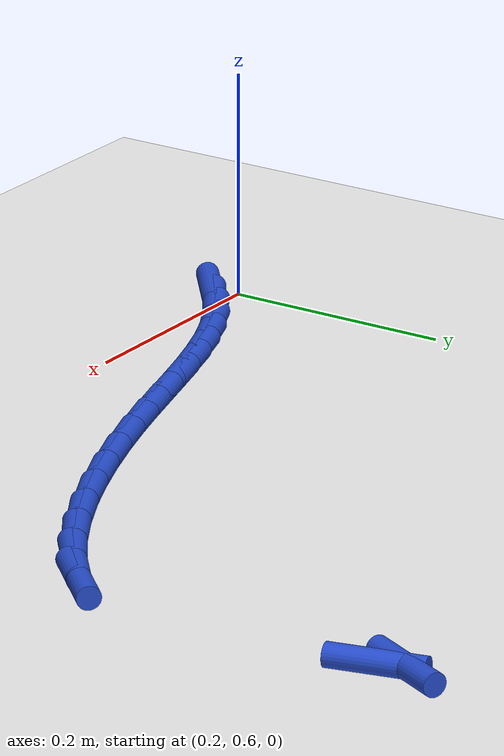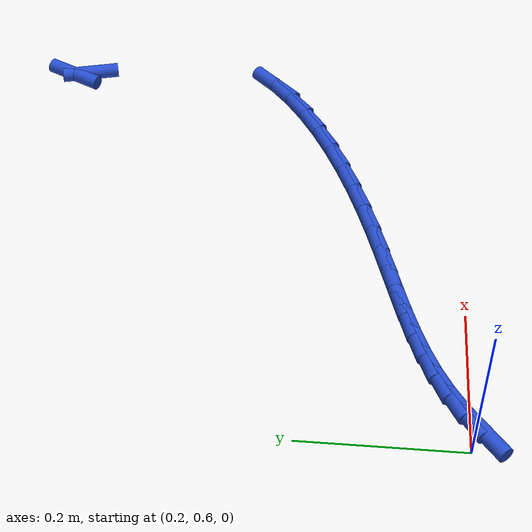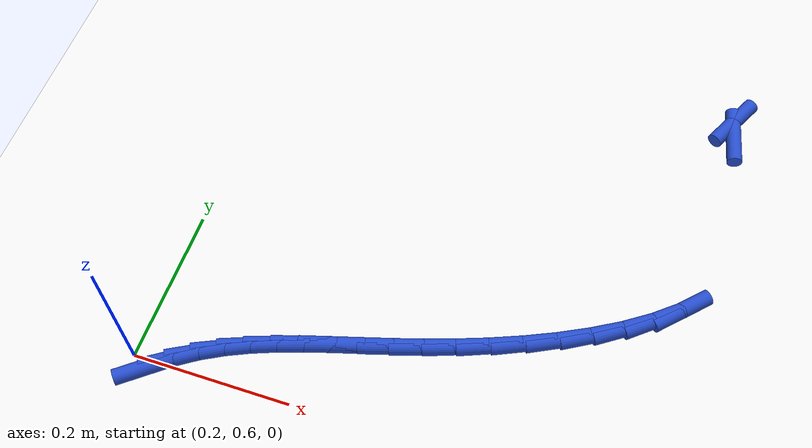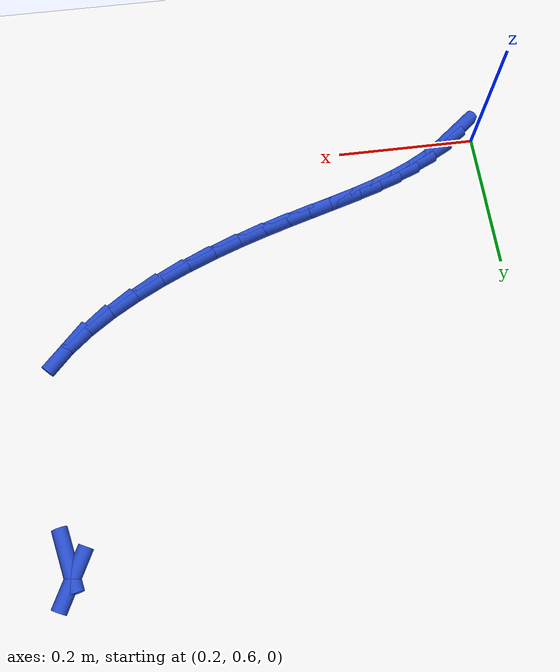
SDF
<sdf version="1.6">
 <world name="default">
  <model name="ground_plane">
   <static>1</static>
   <link name="link">
    <collision name="collision">
     <geometry><plane><normal>0 0 1</normal><size>100 100</size></plane></geometry>
     <surface><friction><ode><mu>100</mu><mu2>50</mu2></ode></friction></surface>
    </collision>
    <visual name="visual">
     <cast_shadows>0</cast_shadows>
     <geometry><plane><normal>0 0 1</normal><size>100 100</size></plane></geometry>
     <material>
      <script><uri>file://media/materials/scripts/gazebo.material</uri><name>Gazebo/WhiteGlow</name></script>
     </material>
    </visual>
   </link>
  </model>
  <model name="line">
   <link name="link_19">
    <pose>0.22421851028423884 0.5877423091255484 0.01 0 1.57 0.6758073908442525</pose>
    <collision name="collision">
     <geometry><cylinder><radius>0.01</radius><length>0.08</length></cylinder></geometry>
    </collision>
    <visual name="visual">
     <material>
      <script><name>Gazebo/Blue</name><uri>file://media/materials/scripts/gazebo.material</uri></script>
     </material>
     <geometry><cylinder><radius>0.01</radius><length>0.08</length></cylinder></geometry>
    </visual>
   </link>
   <link name="link_20">
    <pose>0.2489226295237232 0.6075488483325528 0.01 0 1.57 0.5888493216553347</pose>
    <collision name="collision">
     <geometry><cylinder><radius>0.01</radius><length>0.08</length></cylinder></geometry>
    </collision>
    <visual name="visual">
     <material>
      <script><name>Gazebo/Blue</name><uri>file://media/materials/scripts/gazebo.material</uri></script>
     </material>
     <geometry><cylinder><radius>0.01</radius><length>0.08</length></cylinder></geometry>
    </visual>
   </link>
   <link name="link_21">
    <pose>0.274783455820922 0.6248210458230733 0.01 0 1.57 0.5023941022503997</pose>
    <collision name="collision">
     <geometry><cylinder><radius>0.01</radius><length>0.08</length></cylinder></geometry>
    </collision>
    <visual name="visual">
     <material>
      <script><name>Gazebo/Blue</name><uri>file://media/materials/scripts/gazebo.material</uri></script>
     </material>
     <geometry><cylinder><radius>0.01</radius><length>0.08</length></cylinder></geometry>
    </visual>
   </link>
   <link name="link_22">
    <pose>0.30180047906041185 0.6396646085191082 0.01 0 1.57 0.4283507575286829</pose>
    <collision name="collision">
     <geometry><cylinder><radius>0.01</radius><length>0.08</length></cylinder></geometry>
    </collision>
    <visual name="visual">
     <material>
      <script><name>Gazebo/Blue</name><uri>file://media/materials/scripts/gazebo.material</uri></script>
     </material>
     <geometry><cylinder><radius>0.01</radius><length>0.08</length></cylinder></geometry>
    </visual>
   </link>
   <link name="link_23">
    <pose>0.3299995969917477 0.6525410701493269 0.01 0 1.57 0.36951092484150055</pose>
    <collision name="collision">
     <geometry><cylinder><radius>0.01</radius><length>0.08</length></cylinder></geometry>
    </collision>
    <visual name="visual">
     <material>
      <script><name>Gazebo/Blue</name><uri>file://media/materials/scripts/gazebo.material</uri></script>
     </material>
     <geometry><cylinder><radius>0.01</radius><length>0.08</length></cylinder></geometry>
    </visual>
   </link>
   <link name="link_24">
    <pose>0.3594081208097713 0.6639310095913754 0.01 0 1.57 0.32670310271949693</pose>
    <collision name="collision">
     <geometry><cylinder><radius>0.01</radius><length>0.08</length></cylinder></geometry>
    </collision>
    <visual name="visual">
     <material>
      <script><name>Gazebo/Blue</name><uri>file://media/materials/scripts/gazebo.material</uri></script>
     </material>
     <geometry><cylinder><radius>0.01</radius><length>0.08</length></cylinder></geometry>
    </visual>
   </link>
   <link name="link_25">
    <pose>0.39005336170932364 0.6743150057228985 0.01 0 1.57 0.29965496754526444</pose>
    <collision name="collision">
     <geometry><cylinder><radius>0.01</radius><length>0.08</length></cylinder></geometry>
    </collision>
    <visual name="visual">
     <material>
      <script><name>Gazebo/Blue</name><uri>file://media/materials/scripts/gazebo.material</uri></script>
     </material>
     <geometry><cylinder><radius>0.01</radius><length>0.08</length></cylinder></geometry>
    </visual>
   </link>
   <link name="link_26">
    <pose>0.42196263088524644 0.6841736374215424 0.01 0 1.57 0.28740819542487617</pose>
    <collision name="collision">
     <geometry><cylinder><radius>0.01</radius><length>0.08</length></cylinder></geometry>
    </collision>
    <visual name="visual">
     <material>
      <script><name>Gazebo/Blue</name><uri>file://media/materials/scripts/gazebo.material</uri></script>
     </material>
     <geometry><cylinder><radius>0.01</radius><length>0.08</length></cylinder></geometry>
    </visual>
   </link>
   <link name="link_27">
    <pose>0.45516323953238114 0.6939874835649525 0.01 0 1.57 0.2886335349314423</pose>
    <collision name="collision">
     <geometry><cylinder><radius>0.01</radius><length>0.08</length></cylinder></geometry>
    </collision>
    <visual name="visual">
     <material>
      <script><name>Gazebo/Blue</name><uri>file://media/materials/scripts/gazebo.material</uri></script>
     </material>
     <geometry><cylinder><radius>0.01</radius><length>0.08</length></cylinder></geometry>
    </visual>
   </link>
   <link name="link_28">
    <pose>0.489682498845569 0.7042371230307742 0.01 0 1.57 0.3018209537267275</pose>
    <collision name="collision">
     <geometry><cylinder><radius>0.01</radius><length>0.08</length></cylinder></geometry>
    </collision>
    <visual name="visual">
     <material>
      <script><name>Gazebo/Blue</name><uri>file://media/materials/scripts/gazebo.material</uri></script>
     </material>
     <geometry><cylinder><radius>0.01</radius><length>0.08</length></cylinder></geometry>
    </visual>
   </link>
   <link name="link_29">
    <pose>0.525547720019652 0.7154031346966535 0.01 0 1.57 0.32516992643794584</pose>
    <collision name="collision">
     <geometry><cylinder><radius>0.01</radius><length>0.08</length></cylinder></geometry>
    </collision>
    <visual name="visual">
     <material>
      <script><name>Gazebo/Blue</name><uri>file://media/materials/scripts/gazebo.material</uri></script>
     </material>
     <geometry><cylinder><radius>0.01</radius><length>0.08</length></cylinder></geometry>
    </visual>
   </link>
   <link name="link_30">
    <pose>0.562756377461712 0.7279475493120858 0.01 0 1.57 0.3547476634860732</pose>
    <collision name="collision">
     <geometry><cylinder><radius>0.01</radius><length>0.08</length></cylinder></geometry>
    </collision>
    <visual name="visual">
     <material>
      <script><name>Gazebo/Blue</name><uri>file://media/materials/scripts/gazebo.material</uri></script>
     </material>
     <geometry><cylinder><radius>0.01</radius><length>0.08</length></cylinder></geometry>
    </visual>
   </link>
   <link name="link_31">
    <pose>0.6008864624210706 0.7420716246697212 0.01 0 1.57 0.3891275390165753</pose>
    <collision name="collision">
     <geometry><cylinder><radius>0.01</radius><length>0.08</length></cylinder></geometry>
    </collision>
    <visual name="visual">
     <material>
      <script><name>Gazebo/Blue</name><uri>file://media/materials/scripts/gazebo.material</uri></script>
     </material>
     <geometry><cylinder><radius>0.01</radius><length>0.08</length></cylinder></geometry>
    </visual>
   </link>
   <link name="link_32">
    <pose>0.6392063049287038 0.7577841167417315 0.01 0 1.57 0.4296222060591775</pose>
    <collision name="collision">
     <geometry><cylinder><radius>0.01</radius><length>0.08</length></cylinder></geometry>
    </collision>
    <visual name="visual">
     <material>
      <script><name>Gazebo/Blue</name><uri>file://media/materials/scripts/gazebo.material</uri></script>
     </material>
     <geometry><cylinder><radius>0.01</radius><length>0.08</length></cylinder></geometry>
    </visual>
   </link>
   <link name="link_33">
    <pose>0.6769769989883767 0.7750892832023798 0.01 0 1.57 0.4780321088434812</pose>
    <collision name="collision">
     <geometry><cylinder><radius>0.01</radius><length>0.08</length></cylinder></geometry>
    </collision>
    <visual name="visual">
     <material>
      <script><name>Gazebo/Blue</name><uri>file://media/materials/scripts/gazebo.material</uri></script>
     </material>
     <geometry><cylinder><radius>0.01</radius><length>0.08</length></cylinder></geometry>
    </visual>
   </link>
   <link name="link_34">
    <pose>0.7134596386038544 0.7939913817259285 0.01 0 1.57 0.5367811975345802</pose>
    <collision name="collision">
     <geometry><cylinder><radius>0.01</radius><length>0.08</length></cylinder></geometry>
    </collision>
    <visual name="visual">
     <material>
      <script><name>Gazebo/Blue</name><uri>file://media/materials/scripts/gazebo.material</uri></script>
     </material>
     <geometry><cylinder><radius>0.01</radius><length>0.08</length></cylinder></geometry>
    </visual>
   </link>
   <link name="link_35">
    <pose>0.7479153177789027 0.814494669986641 0.01 0 1.57 0.609154211488663</pose>
    <collision name="collision">
     <geometry><cylinder><radius>0.01</radius><length>0.08</length></cylinder></geometry>
    </collision>
    <visual name="visual">
     <material>
      <script><name>Gazebo/Blue</name><uri>file://media/materials/scripts/gazebo.material</uri></script>
     </material>
     <geometry><cylinder><radius>0.01</radius><length>0.08</length></cylinder></geometry>
    </visual>
   </link>
   <link name="link_36">
    <pose>0.7796051305172867 0.83660340565878 0.01 0 1.57 0.6995537803106278</pose>
    <collision name="collision">
     <geometry><cylinder><radius>0.01</radius><length>0.08</length></cylinder></geometry>
    </collision>
    <visual name="visual">
     <material>
      <script><name>Gazebo/Blue</name><uri>file://media/materials/scripts/gazebo.material</uri></script>
     </material>
     <geometry><cylinder><radius>0.01</radius><length>0.08</length></cylinder></geometry>
    </visual>
   </link>
   <link name="link_37">
    <pose>0.8077901708227724 0.8603218464166089 0.01 0 1.57 0.8136215447781497</pose>
    <collision name="collision">
     <geometry><cylinder><radius>0.01</radius><length>0.08</length></cylinder></geometry>
    </collision>
    <visual name="visual">
     <material>
      <script><name>Gazebo/Blue</name><uri>file://media/materials/scripts/gazebo.material</uri></script>
     </material>
     <geometry><cylinder><radius>0.01</radius><length>0.08</length></cylinder></geometry>
    </visual>
   </link>
   <link name="link_46">
    <pose>0.8148772272950504 1.1328177932591332 0.01 0 1.57 -1.3338683731112164</pose>
    <collision name="collision">
     <geometry><cylinder><radius>0.01</radius><length>0.08</length></cylinder></geometry>
    </collision>
    <visual name="visual">
     <material>
      <script><name>Gazebo/Blue</name><uri>file://media/materials/scripts/gazebo.material</uri></script>
     </material>
     <geometry><cylinder><radius>0.01</radius><length>0.08</length></cylinder></geometry>
    </visual>
   </link>
   <link name="link_47">
    <pose>0.8095532159255139 1.1548667562507464 0.01 0 1.57 1.119879310825265</pose>
    <collision name="collision">
     <geometry><cylinder><radius>0.01</radius><length>0.08</length></cylinder></geometry>
    </collision>
    <visual name="visual">
     <material>
      <script><name>Gazebo/Blue</name><uri>file://media/materials/scripts/gazebo.material</uri></script>
     </material>
     <geometry><cylinder><radius>0.01</radius><length>0.08</length></cylinder></geometry>
    </visual>
   </link>
  </model>
 </world>
</sdf>
